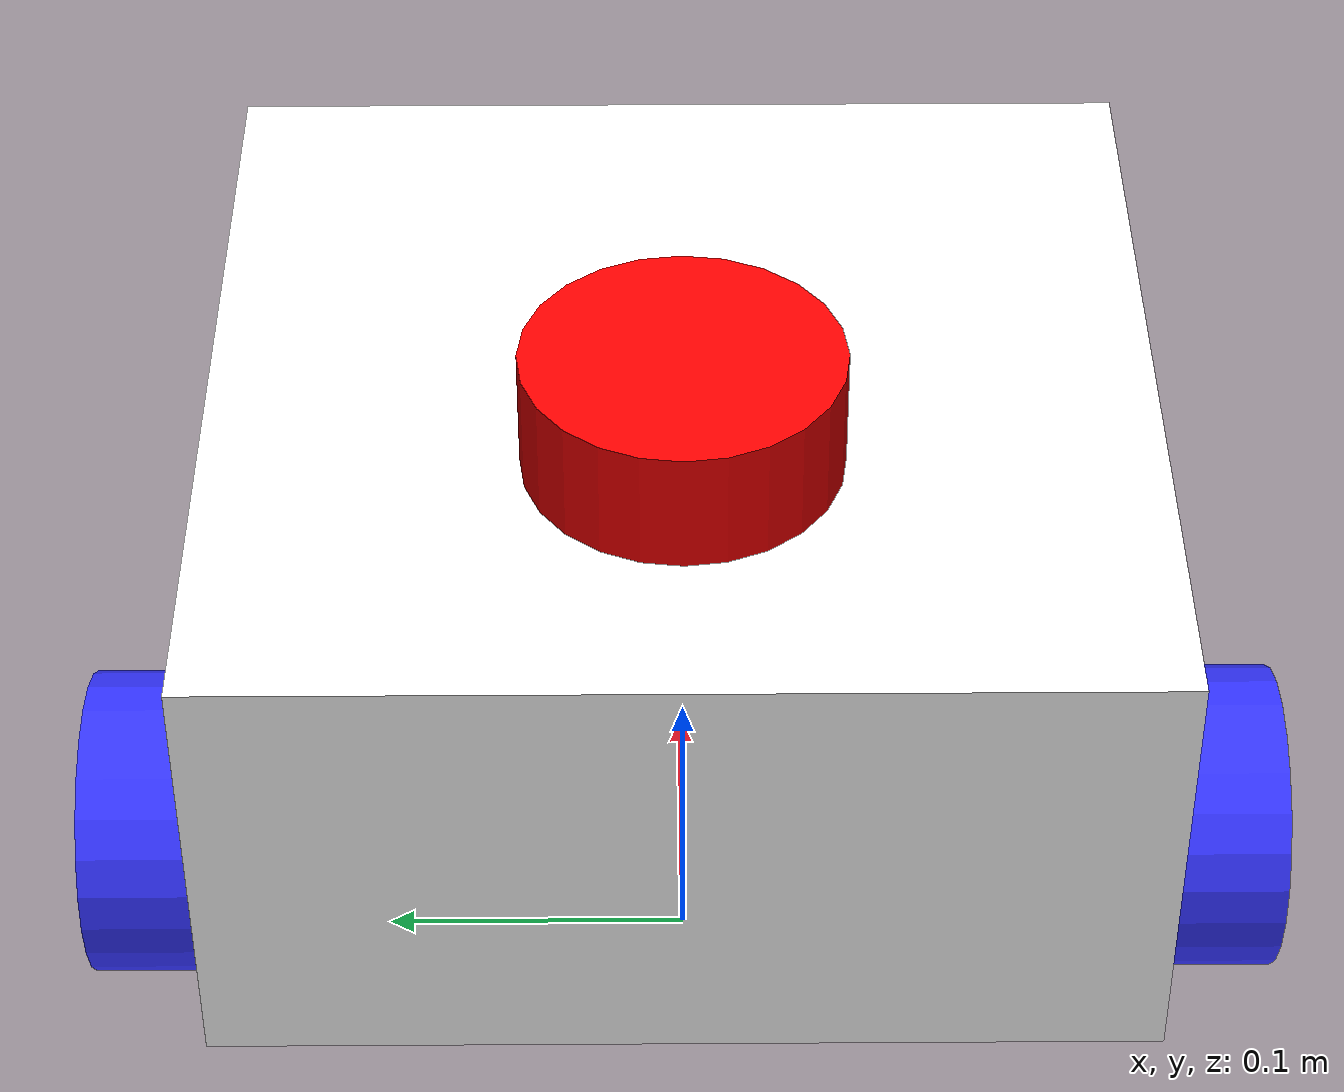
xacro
<?xml version="1.0"?>
<robot xmlns:xacro="http://www.ros.org/wiki/xacro"  name="robot">

   <xacro:include filename="$(find my_bot)/description/robot_core.xacro" />
   <xacro:include filename="$(find my_bot)/description/gazebo_control.xacro"/>

<xacro:include filename="$(find my_bot)/description/lidar.xacro"/>
</robot>

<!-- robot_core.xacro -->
<robot xmlns:xacro="http://www.ros.org/wiki/xacro" >
  <xacro:include filename="$(find my_bot)/description/inertial_macros.xacro" />
   <material name="white">
     <color rgba="1 1 1 1"/>
     </material>
     <material name="orange">
      <color rgba="1 0.3 0.1 1"/>
     </material>

      <material name="blue">
     <color rgba="0.2 0.2 1 1"/>
     </material>

     <material name="red">
     <color rgba="1 0 0 1"/>
     </material>

      <material name="black">
     <color rgba="0 0 0 1"/>
     </material>
     <!--BASE LINK -->
     <link name="base_link">
      </link>

     <!-- CHASSIS LINK -->
     <joint name="chassis_joint" type="fixed">
         <parent link="base_link"/>
          <child link="chassis"/>
           <origin xyz="-0.1 0 0.05"/>
     </joint>

     <link name="chassis">
         <visual>
               <origin xyz="0.15 0 0.075"/>
              <geometry>
                 <box size="0.3 0.3 0.15"/>
               </geometry>
                <material name="white"/>
          </visual>
          <collision>
               <origin xyz="0.15 0 0.075"/>
              <geometry>
                 <box size="0.3 0.3 0.15"/>
               </geometry>
                <material name="white"/>
          </collision>
     <xacro:inertial_box mass="0.5" x="0.3" y="0.3" z="0.15">
     <origin xyz="0.15 0 0.075" rpy="0 0 0"/>
     </xacro:inertial_box>
     </link>
     <gazebo reference="chassis">
        <material>Gazebo/White</material>
      </gazebo>

      <joint name="left_wheel_joint" type="continuous">
         <parent link="base_link"/>
         <child link="left_wheel"/>
         <origin xyz="0 0.175 0.05" rpy="-${pi/2} 0 0"/>
         <axis xyz="0 0 1"/>
         </joint>

         <link name="left_wheel">
              <visual>
                  <geometry>
                   <cylinder radius="0.05" length="0.04"/>
                  </geometry>
                  <material name="blue"/>
              </visual>
              <collision>
                  <geometry>
                   <cylinder radius="0.05" length="0.04"/>
                  </geometry>
                  <material name="blue"/>
              </collision>
              <xacro:inertial_cylinder mass="0.1" length="0.04" radius="0.05">
              <origin xyz="0 0 0" rpy="0 0 0"/>
              </xacro:inertial_cylinder>
            </link>

          <gazebo reference="left_wheel">
        <material>Gazebo/blue</material>
      </gazebo>

       <joint name="right_wheel_joint" type="continuous">
         <parent link="base_link"/>
         <child link="right_wheel"/>
         <origin xyz="0 -0.175 0.05" rpy="${pi/2} 0 0"/>
         <axis xyz="0 0 -1"/>
         </joint>

         <link name="right_wheel">
              <visual>
                  <geometry>
                   <cylinder radius="0.05" length="0.04"/>
                  </geometry>
                  <material name="blue"/>
              </visual>
              <collision>
                  <geometry>
                   <cylinder radius="0.05" length="0.04"/>
                  </geometry>
                  <material name="blue"/>
              </collision>
              <xacro:inertial_cylinder mass="0.1" length="0.04" radius="0.05">
              <origin xyz="0 0 0" rpy="0 0 0"/>
              </xacro:inertial_cylinder>
            </link>

               <gazebo reference="right_wheel">
        <material>Gazebo/blue</material>
      </gazebo>

  <joint name="caster_wheel_joint" type="fixed">
    <parent link="chassis"/>
    <child link="caster_wheel"/>
    <origin xyz="0.24 0 0"/>
   </joint>
   <link name="caster_wheel" >
     <visual>
         <geometry>
              <sphere radius="0.05"/>
          </geometry>
          <material name="black"/>
     </visual>
     <collision>
         <geometry>
              <sphere radius="0.05"/>
          </geometry>
          <material name="black"/>
     </collision>
     <xacro:inertial_sphere mass="0.1" radius="0.05">
              <origin xyz="0 0 0" rpy="0 0 0"/>
              </xacro:inertial_sphere>
     </link>
     <gazebo reference="caster_wheel">
       <material>Gazebo/Black</material>
       <mu1 value="0.001"/>
       <mu2 value="0.001"/>
       </gazebo>

</robot>

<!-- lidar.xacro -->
<robot xmlns:xacro="http://www.ros.org/wiki/xacro">

  <joint name="laser_joint" type="fixed">
   <parent link="chassis"/>
   <child link="laser_frame"/>
   <origin xyz="0.1 0 0.175" rpy="0 0 0"/>
   </joint>

   <link name="laser_frame">
               <visual>
                  <geometry>
                        <cylinder radius="0.05" length="0.04"/>
                  </geometry>
                  <material name="red"/>
              </visual>
              <collision>
                  <geometry>
                   <cylinder radius="0.05" length="0.04"/>
                  </geometry>
                  <material name="blue"/>
              </collision>
              <xacro:inertial_cylinder mass="0.1" length="0.04" radius="0.05">
              <origin xyz="0 0 0" rpy="0 0 0"/>
              </xacro:inertial_cylinder>
   </link>

   <gazebo reference="laser_frame">
        <sensor name="laser" type="ray">
          <pose>0 0 0 0 0 0</pose>
          <visualize>false</visualize>
          <update_rate>10</update_rate>
          <ray>
             <scan>
                <horizontal>
                    <samples>360</samples>
                    <min_angle>-3.14</min_angle>
                    <max_angle>3.14</max_angle>
                 </horizontal>
                    </scan>
                    <range>
                       <min>0.3</min>
                       <max>12</max>
                     </range>
                   </ray>
                   <plugin name="laser_controller" filename="libgazebo_ros_ray_sensor.so">
                      <ros>
                          <remapping>~/out:=scan</remapping>
                       </ros>
                      <output_type>sensor_msgs/LaserScan</output_type>
                      <frame_name>laser_frame</frame_name>
                      </plugin>
                 </sensor>
              </gazebo>

</robot>
